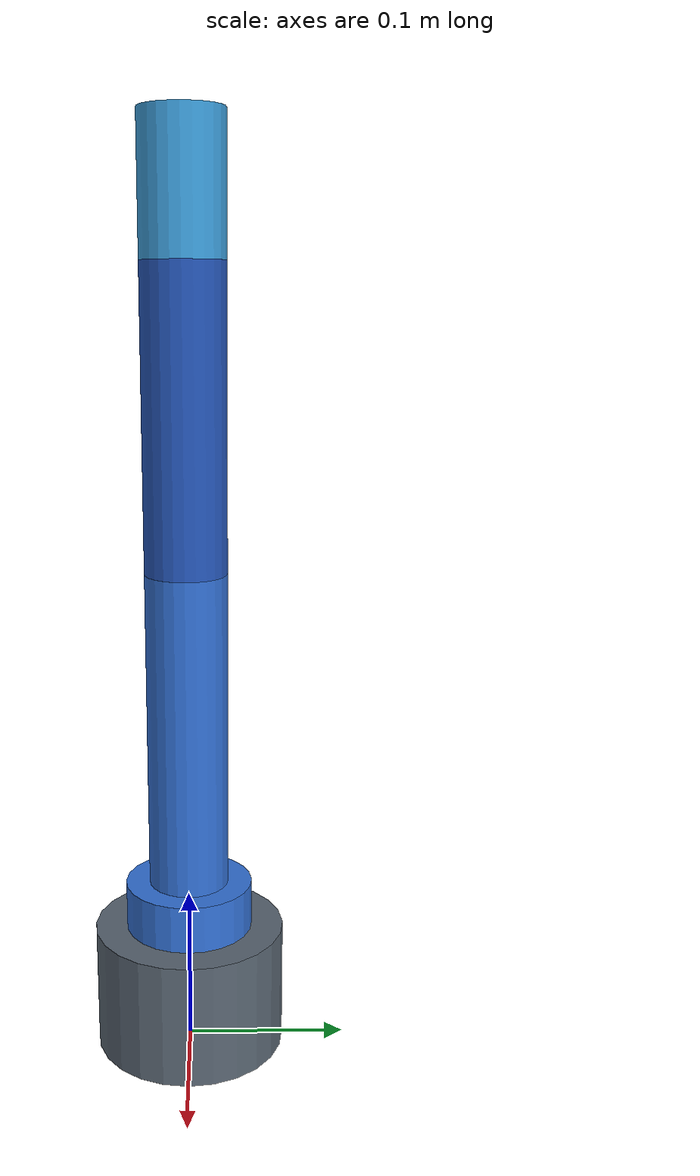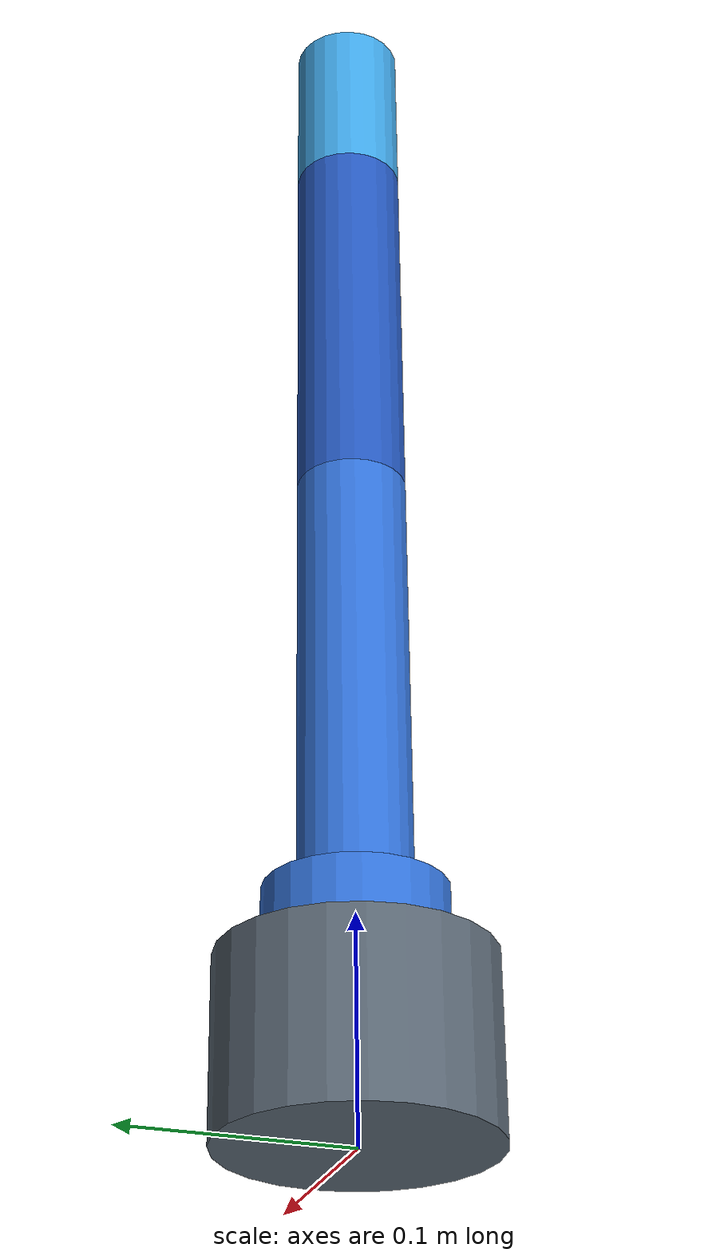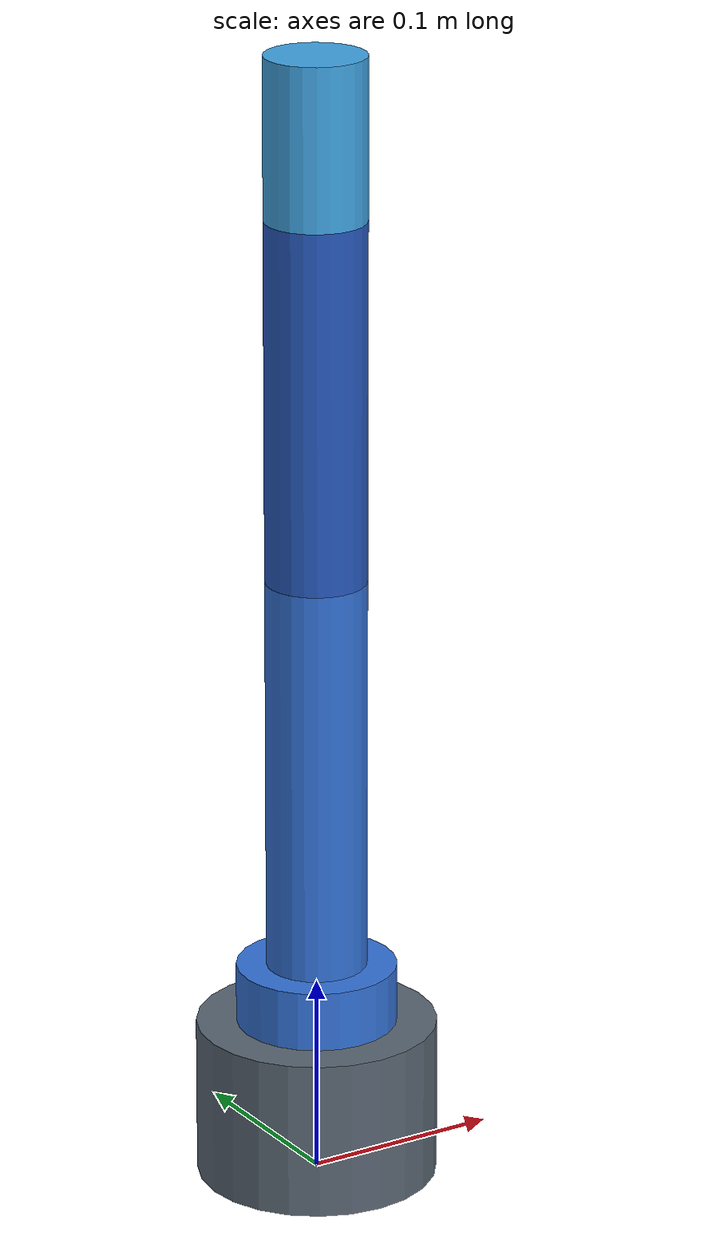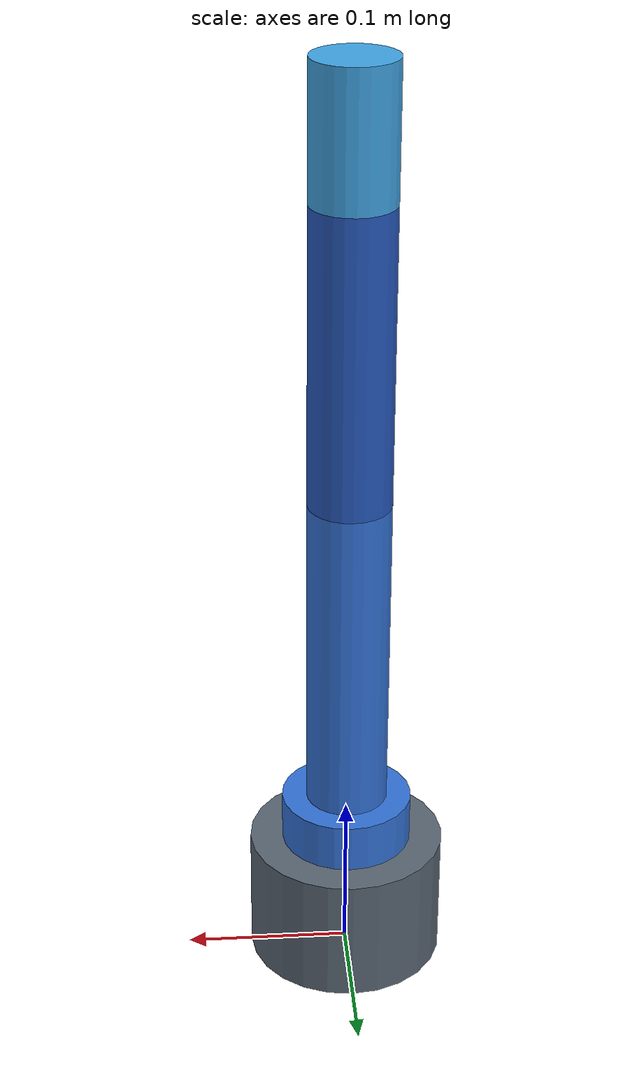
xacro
<?xml version="1.0"?>
<robot xmlns:xacro="http://www.ros.org/wiki/xacro" name="argus_arm">

  <!-- ARGUS v1: configurable robot dimensions (metres) -->
  <xacro:property name="base_radius" value="0.06"/>
  <xacro:property name="base_height" value="0.08"/>
  <xacro:property name="upper_arm_length" value="0.20"/>
  <xacro:property name="forearm_length" value="0.18"/>
  <xacro:property name="wrist_length" value="0.08"/>

  <!-- Visual dimensions -->
  <xacro:property name="arm_radius" value="0.025"/>

  <!-- Fixed base -->
  <link name="base_link">
    <visual>
      <geometry>
        <cylinder radius="${base_radius}" length="${base_height}"/>
      </geometry>
      <origin xyz="0 0 ${base_height / 2}" rpy="0 0 0"/>
      <material name="base_gray">
        <color rgba="0.35 0.40 0.45 1.0"/>
      </material>
    </visual>
  </link>

  <!-- Rotating platform -->
  <link name="base_rotation_link">
    <visual>
      <geometry>
        <cylinder radius="0.04" length="0.03"/>
      </geometry>
      <origin xyz="0 0 0.015" rpy="0 0 0"/>
      <material name="rotation_blue">
        <color rgba="0.20 0.45 0.85 1.0"/>
      </material>
    </visual>
  </link>

  <!-- J1: Base rotation around Z-axis -->
  <joint name="base_rotation_joint" type="revolute">
    <parent link="base_link"/>
    <child link="base_rotation_link"/>
    <origin xyz="0 0 ${base_height}" rpy="0 0 0"/>
    <axis xyz="0 0 1"/>
    <limit lower="-3.14" upper="3.14"
           effort="10.0" velocity="1.0"/>
  </joint>

    <!-- Upper arm -->
  <link name="upper_arm_link">
    <visual>
      <geometry>
        <cylinder radius="${arm_radius}"
                  length="${upper_arm_length}"/>
      </geometry>
      <origin xyz="0 0 ${upper_arm_length / 2}" rpy="0 0 0"/>
      <material name="arm_blue">
        <color rgba="0.20 0.45 0.85 1.0"/>
      </material>
    </visual>
  </link>

  <!-- J2: Shoulder rotation around Y-axis -->
  <joint name="shoulder_joint" type="revolute">
    <parent link="base_rotation_link"/>
    <child link="upper_arm_link"/>

    <origin xyz="0 0 0.03" rpy="0 0 0"/>
    <axis xyz="0 1 0"/>

    <limit lower="-1.57" upper="1.57"
           effort="10.0" velocity="1.0"/>
  </joint>

  <!-- Forearm -->
  <link name="forearm_link">
    <visual>
      <geometry>
        <cylinder radius="${arm_radius}"
                  length="${forearm_length}"/>
      </geometry>
      <origin xyz="0 0 ${forearm_length / 2}" rpy="0 0 0"/>
      <material name="forearm_blue">
        <color rgba="0.15 0.35 0.75 1.0"/>
      </material>
    </visual>
  </link>

  <!-- J3: Elbow rotation around Y-axis -->
  <joint name="elbow_joint" type="revolute">
    <parent link="upper_arm_link"/>
    <child link="forearm_link"/>

    <origin xyz="0 0 ${upper_arm_length}" rpy="0 0 0"/>
    <axis xyz="0 1 0"/>

    <limit lower="-2.35" upper="2.35"
           effort="10.0" velocity="1.0"/>
  </joint>

    <!-- Wrist link -->
  <link name="wrist_link">
    <visual>
      <origin xyz="0 0 ${wrist_length / 2}" rpy="0 0 0"/>
      <geometry>
        <cylinder radius="${arm_radius}" length="${wrist_length}"/>
      </geometry>
      <material name="wrist_blue">
        <color rgba="0.25 0.65 0.90 1.0"/>
      </material>
    </visual>
  </link>

  <!-- J4: Wrist rotation around Y-axis -->
  <joint name="wrist_joint" type="revolute">
    <parent link="forearm_link"/>
    <child link="wrist_link"/>
    <origin xyz="0 0 ${forearm_length}" rpy="0 0 0"/>
    <axis xyz="0 1 0"/>
    <limit lower="-1.57" upper="1.57"
           effort="10.0" velocity="1.0"/>
  </joint>

<!-- Tool-tip coordinate frame -->
  <link name="tool_tip"/>

<!-- Fixed offset from wrist origin to wrist tip -->
  <joint name="tool_tip_joint" type="fixed">
    <parent link="wrist_link"/>
    <child link="tool_tip"/>
    <origin xyz="0 0 ${wrist_length}" rpy="0 0 0"/>
  </joint>

</robot>
